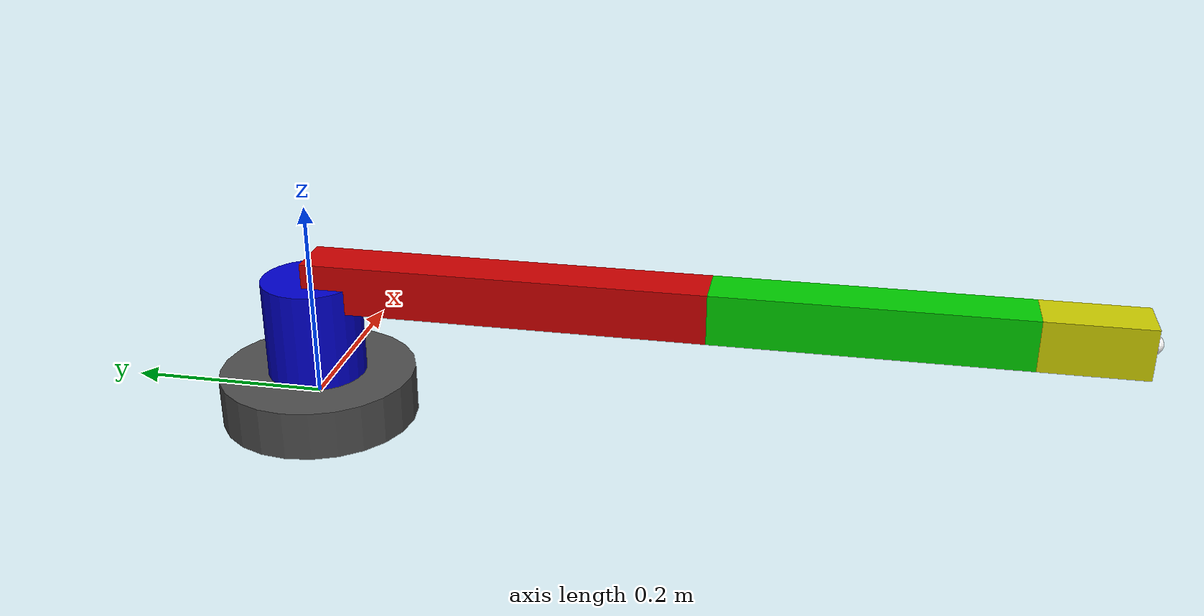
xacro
<?xml version="1.0"?>
<robot xmlns:xacro="http://www.ros.org/wiki/xacro" name="smore_bot">

  <xacro:include filename="$(find smore_bot_description)/urdf/materials.xacro" />
  <xacro:include filename="$(find smore_bot_description)/urdf/smore_bot.gazebo" />

  <xacro:property name="base_radius" value="0.1" />
  <xacro:property name="base_height" value="0.05" />
  <xacro:property name="shoulder_height" value="0.1" />
  <xacro:property name="upper_arm_length" value="0.4" />
  <xacro:property name="forearm_length" value="0.3" />
  <xacro:property name="wrist_length" value="0.1" />
  <xacro:property name="joint_damping" value="0.1" />
  <xacro:property name="joint_friction" value="0.1" />

  <!-- Base Link -->
  <link name="base_link">
    <visual>
      <geometry>
        <cylinder radius="${base_radius}" length="${base_height}"/>
      </geometry>
      <material name="dark_grey"/>
    </visual>
    <collision>
      <geometry>
        <cylinder radius="${base_radius}" length="${base_height}"/>
      </geometry>
    </collision>
    <inertial>
      <mass value="1.0"/>
      <inertia ixx="0.01" ixy="0.0" ixz="0.0" iyy="0.01" iyz="0.0" izz="0.01"/>
    </inertial>
  </link>

  <!-- Joint: Base to Shoulder -->
  <joint name="base_to_shoulder" type="revolute">
    <parent link="base_link"/>
    <child link="shoulder_link"/>
    <origin xyz="0 0 ${base_height/2 + shoulder_height/2}" rpy="0 0 0"/>
    <axis xyz="0 0 1"/>
    <limit lower="-3.14" upper="3.14" effort="100" velocity="1.0"/>
    <dynamics damping="${joint_damping}" friction="${joint_friction}"/>
  </joint>

  <!-- Shoulder Link -->
  <link name="shoulder_link">
    <visual>
      <geometry>
        <cylinder radius="0.05" length="${shoulder_height}"/>
      </geometry>
      <material name="blue"/>
    </visual>
    <collision>
      <geometry>
        <cylinder radius="0.05" length="${shoulder_height}"/>
      </geometry>
    </collision>
    <inertial>
      <mass value="0.5"/>
      <inertia ixx="0.01" ixy="0.0" ixz="0.0" iyy="0.01" iyz="0.0" izz="0.01"/>
    </inertial>
  </link>

  <!-- Joint: Shoulder to Upper Arm -->
  <joint name="shoulder_to_upper_arm" type="revolute">
    <parent link="shoulder_link"/>
    <child link="upper_arm_link"/>
    <origin xyz="0 0 ${shoulder_height/2}" rpy="1.57 0 0"/>
    <axis xyz="0 1 0"/>
    <limit lower="-1.57" upper="1.57" effort="100" velocity="1.0"/>
    <dynamics damping="${joint_damping}" friction="${joint_friction}"/>
  </joint>

  <!-- Upper Arm Link -->
  <link name="upper_arm_link">
    <visual>
      <geometry>
        <box size="0.05 0.05 ${upper_arm_length}"/>
      </geometry>
      <origin xyz="0 0 ${upper_arm_length/2}" rpy="0 0 0"/>
      <material name="red"/>
    </visual>
    <collision>
      <geometry>
        <box size="0.05 0.05 ${upper_arm_length}"/>
      </geometry>
      <origin xyz="0 0 ${upper_arm_length/2}" rpy="0 0 0"/>
    </collision>
    <inertial>
      <mass value="0.5"/>
      <origin xyz="0 0 ${upper_arm_length/2}" rpy="0 0 0"/>
      <inertia ixx="0.01" ixy="0.0" ixz="0.0" iyy="0.01" iyz="0.0" izz="0.01"/>
    </inertial>
  </link>

  <!-- Joint: Upper Arm to Forearm -->
  <joint name="elbow" type="revolute">
    <parent link="upper_arm_link"/>
    <child link="forearm_link"/>
    <origin xyz="0 0 ${upper_arm_length}" rpy="0 0 0"/>
    <axis xyz="0 1 0"/>
    <limit lower="-1.57" upper="1.57" effort="100" velocity="1.0"/>
    <dynamics damping="${joint_damping}" friction="${joint_friction}"/>
  </joint>

  <!-- Forearm Link -->
  <link name="forearm_link">
    <visual>
      <geometry>
        <box size="0.05 0.05 ${forearm_length}"/>
      </geometry>
      <origin xyz="0 0 ${forearm_length/2}" rpy="0 0 0"/>
      <material name="green"/>
    </visual>
    <collision>
      <geometry>
        <box size="0.05 0.05 ${forearm_length}"/>
      </geometry>
      <origin xyz="0 0 ${forearm_length/2}" rpy="0 0 0"/>
    </collision>
    <inertial>
      <mass value="0.4"/>
      <origin xyz="0 0 ${forearm_length/2}" rpy="0 0 0"/>
      <inertia ixx="0.01" ixy="0.0" ixz="0.0" iyy="0.01" iyz="0.0" izz="0.01"/>
    </inertial>
  </link>

  <!-- Wrist Joint -->
  <joint name="wrist" type="revolute">
    <parent link="forearm_link"/>
    <child link="wrist_link"/>
    <origin xyz="0 0 ${forearm_length}" rpy="0 0 0"/>
    <axis xyz="0 0 1"/>
    <limit lower="-3.14" upper="3.14" effort="50" velocity="1.0"/>
    <dynamics damping="${joint_damping}" friction="${joint_friction}"/>
  </joint>

  <!-- Wrist Link -->
  <link name="wrist_link">
    <visual>
      <geometry>
        <box size="0.05 0.05 ${wrist_length}"/>
      </geometry>
      <origin xyz="0 0 ${wrist_length/2}" rpy="0 0 0"/>
      <material name="yellow"/>
    </visual>
    <collision>
      <geometry>
        <box size="0.05 0.05 ${wrist_length}"/>
      </geometry>
      <origin xyz="0 0 ${wrist_length/2}" rpy="0 0 0"/>
    </collision>
    <inertial>
      <mass value="0.2"/>
      <origin xyz="0 0 ${wrist_length/2}" rpy="0 0 0"/>
      <inertia ixx="0.01" ixy="0.0" ixz="0.0" iyy="0.01" iyz="0.0" izz="0.01"/>
    </inertial>
  </link>

  <!-- End Effector Joint -->
  <joint name="end_effector_joint" type="fixed">
    <parent link="wrist_link"/>
    <child link="end_effector_link"/>
    <origin xyz="0 0 ${wrist_length}" rpy="0 0 0"/>
  </joint>

  <!-- End Effector Link -->
  <link name="end_effector_link">
    <visual>
      <geometry>
        <sphere radius="0.01"/>
      </geometry>
      <material name="white"/>
    </visual>
    <collision>
      <geometry>
        <sphere radius="0.01"/>
      </geometry>
    </collision>
    <inertial>
      <mass value="0.1"/>
      <inertia ixx="0.001" ixy="0.0" ixz="0.0" iyy="0.001" iyz="0.0" izz="0.001"/>
    </inertial>
  </link>

  <!-- ROS2 Control interface -->
  <ros2_control name="GazeboSystem" type="system">
    <hardware>
      <plugin>gazebo_ros2_control/GazeboSystem</plugin>
    </hardware>

    <joint name="base_to_shoulder">
      <command_interface name="position">
        <param name="min">-3.14</param>
        <param name="max">3.14</param>
      </command_interface>
      <state_interface name="position"/>
      <state_interface name="velocity"/>
    </joint>

    <joint name="shoulder_to_upper_arm">
      <command_interface name="position">
        <param name="min">-1.57</param>
        <param name="max">1.57</param>
      </command_interface>
      <state_interface name="position"/>
      <state_interface name="velocity"/>
    </joint>

    <joint name="elbow">
      <command_interface name="position">
        <param name="min">-1.57</param>
        <param name="max">1.57</param>
      </command_interface>
      <state_interface name="position"/>
      <state_interface name="velocity"/>
    </joint>

    <joint name="wrist">
      <command_interface name="position">
        <param name="min">-3.14</param>
        <param name="max">3.14</param>
      </command_interface>
      <state_interface name="position"/>
      <state_interface name="velocity"/>
    </joint>
  </ros2_control>

</robot>

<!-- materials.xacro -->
<robot xmlns:xacro="http://www.ros.org/wiki/xacro">
  <material name="black">
    <color rgba="0.0 0.0 0.0 1.0"/>
  </material>

  <material name="dark_grey">
    <color rgba="0.3 0.3 0.3 1.0"/>
  </material>

  <material name="grey">
    <color rgba="0.5 0.5 0.5 1.0"/>
  </material>

  <material name="white">
    <color rgba="1.0 1.0 1.0 1.0"/>
  </material>

  <material name="red">
    <color rgba="0.8 0.0 0.0 1.0"/>
  </material>

  <material name="green">
    <color rgba="0.0 0.8 0.0 1.0"/>
  </material>

  <material name="blue">
    <color rgba="0.0 0.0 0.8 1.0"/>
  </material>

  <material name="yellow">
    <color rgba="0.8 0.8 0.0 1.0"/>
  </material>
</robot>
